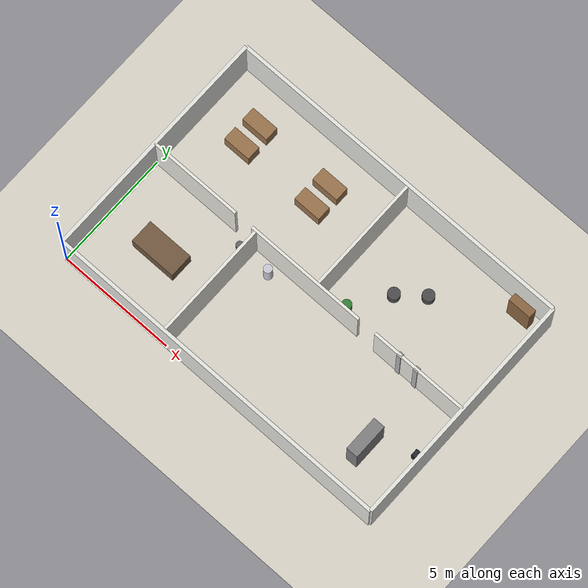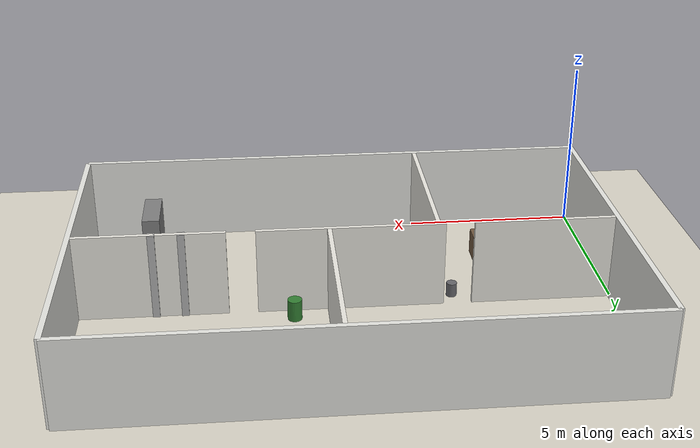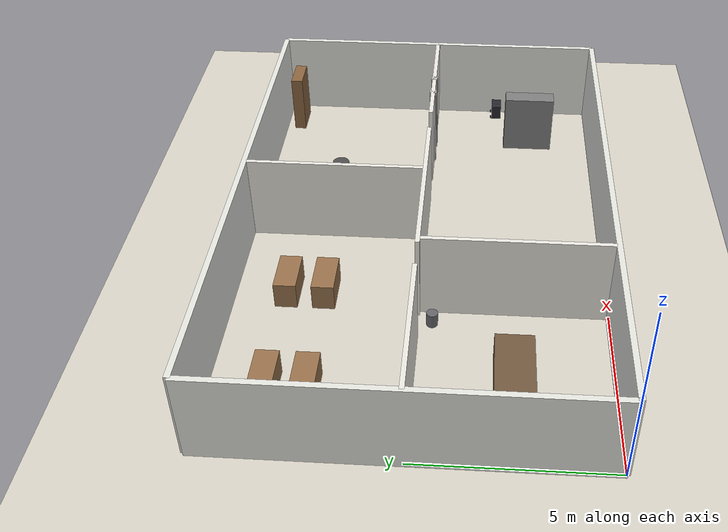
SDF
<?xml version="1.0" ?>
<!-- SPDX-License-Identifier: Apache-2.0 -->
<!-- Office environment for navigation testing.
     15m x 10m floor plan with corridors, rooms, and furniture. -->
<sdf version="1.9">
  <world name="office">
    <physics name="1ms" type="ignored">
      <max_step_size>0.001</max_step_size>
      <real_time_factor>1.0</real_time_factor>
    </physics>

    <plugin filename="gz-sim-physics-system" name="gz::sim::systems::Physics"/>
    <plugin filename="gz-sim-scene-broadcaster-system" name="gz::sim::systems::SceneBroadcaster"/>
    <plugin filename="gz-sim-sensors-system" name="gz::sim::systems::Sensors">
      <render_engine>ogre</render_engine>
    </plugin>
    <plugin filename="gz-sim-user-commands-system" name="gz::sim::systems::UserCommands"/>

    <light type="directional" name="sun">
      <cast_shadows>true</cast_shadows>
      <pose>0 0 10 0 0 0</pose>
      <diffuse>0.8 0.8 0.8 1</diffuse>
      <specular>0.2 0.2 0.2 1</specular>
      <direction>-0.5 0.1 -0.9</direction>
    </light>

    <!-- Ground plane -->
    <model name="ground_plane">
      <static>true</static>
      <link name="link">
        <collision name="collision">
          <geometry><plane><normal>0 0 1</normal><size>20 15</size></plane></geometry>
        </collision>
        <visual name="visual">
          <geometry><plane><normal>0 0 1</normal><size>20 15</size></plane></geometry>
          <material>
            <ambient>0.85 0.83 0.78 1</ambient>
            <diffuse>0.85 0.83 0.78 1</diffuse>
          </material>
        </visual>
      </link>
    </model>

    <!-- Outer walls (15m x 10m, 0.15m thick, 2.5m tall) -->
    <!-- North wall -->
    <model name="wall_north">
      <static>true</static>
      <pose>7.5 10 1.25 0 0 0</pose>
      <link name="link">
        <collision name="collision">
          <geometry><box><size>15 0.15 2.5</size></box></geometry>
        </collision>
        <visual name="visual">
          <geometry><box><size>15 0.15 2.5</size></box></geometry>
          <material><ambient>0.9 0.9 0.88 1</ambient><diffuse>0.9 0.9 0.88 1</diffuse></material>
        </visual>
      </link>
    </model>

    <!-- South wall -->
    <model name="wall_south">
      <static>true</static>
      <pose>7.5 0 1.25 0 0 0</pose>
      <link name="link">
        <collision name="collision">
          <geometry><box><size>15 0.15 2.5</size></box></geometry>
        </collision>
        <visual name="visual">
          <geometry><box><size>15 0.15 2.5</size></box></geometry>
          <material><ambient>0.9 0.9 0.88 1</ambient><diffuse>0.9 0.9 0.88 1</diffuse></material>
        </visual>
      </link>
    </model>

    <!-- West wall -->
    <model name="wall_west">
      <static>true</static>
      <pose>0 5 1.25 0 0 0</pose>
      <link name="link">
        <collision name="collision">
          <geometry><box><size>0.15 10 2.5</size></box></geometry>
        </collision>
        <visual name="visual">
          <geometry><box><size>0.15 10 2.5</size></box></geometry>
          <material><ambient>0.9 0.9 0.88 1</ambient><diffuse>0.9 0.9 0.88 1</diffuse></material>
        </visual>
      </link>
    </model>

    <!-- East wall -->
    <model name="wall_east">
      <static>true</static>
      <pose>15 5 1.25 0 0 0</pose>
      <link name="link">
        <collision name="collision">
          <geometry><box><size>0.15 10 2.5</size></box></geometry>
        </collision>
        <visual name="visual">
          <geometry><box><size>0.15 10 2.5</size></box></geometry>
          <material><ambient>0.9 0.9 0.88 1</ambient><diffuse>0.9 0.9 0.88 1</diffuse></material>
        </visual>
      </link>
    </model>

    <!-- Central corridor wall (separates north rooms from south rooms) -->
    <!-- Left section: x=0 to x=4 -->
    <model name="corridor_wall_left">
      <static>true</static>
      <pose>2 5 1.25 0 0 0</pose>
      <link name="link">
        <collision name="collision">
          <geometry><box><size>4 0.12 2.5</size></box></geometry>
        </collision>
        <visual name="visual">
          <geometry><box><size>4 0.12 2.5</size></box></geometry>
          <material><ambient>0.92 0.91 0.88 1</ambient><diffuse>0.92 0.91 0.88 1</diffuse></material>
        </visual>
      </link>
    </model>

    <!-- Corridor wall gap (door at x=4 to x=4.8, width=0.8m) -->

    <!-- Middle section: x=4.8 to x=10 -->
    <model name="corridor_wall_mid">
      <static>true</static>
      <pose>7.4 5 1.25 0 0 0</pose>
      <link name="link">
        <collision name="collision">
          <geometry><box><size>5.2 0.12 2.5</size></box></geometry>
        </collision>
        <visual name="visual">
          <geometry><box><size>5.2 0.12 2.5</size></box></geometry>
          <material><ambient>0.92 0.91 0.88 1</ambient><diffuse>0.92 0.91 0.88 1</diffuse></material>
        </visual>
      </link>
    </model>

    <!-- Corridor wall gap (door at x=10 to x=10.8, width=0.8m) -->

    <!-- Right section: x=10.8 to x=15 -->
    <model name="corridor_wall_right">
      <static>true</static>
      <pose>12.9 5 1.25 0 0 0</pose>
      <link name="link">
        <collision name="collision">
          <geometry><box><size>4.2 0.12 2.5</size></box></geometry>
        </collision>
        <visual name="visual">
          <geometry><box><size>4.2 0.12 2.5</size></box></geometry>
          <material><ambient>0.92 0.91 0.88 1</ambient><diffuse>0.92 0.91 0.88 1</diffuse></material>
        </visual>
      </link>
    </model>

    <!-- Room divider: Meeting room wall (south side, x=5) -->
    <model name="room_divider_south">
      <static>true</static>
      <pose>5 2.5 1.25 0 0 0</pose>
      <link name="link">
        <collision name="collision">
          <geometry><box><size>0.12 4.88 2.5</size></box></geometry>
        </collision>
        <visual name="visual">
          <geometry><box><size>0.12 4.88 2.5</size></box></geometry>
          <material><ambient>0.92 0.91 0.88 1</ambient><diffuse>0.92 0.91 0.88 1</diffuse></material>
        </visual>
      </link>
    </model>

    <!-- Room divider: North side office partition (x=8) -->
    <model name="room_divider_north">
      <static>true</static>
      <pose>8 7.5 1.25 0 0 0</pose>
      <link name="link">
        <collision name="collision">
          <geometry><box><size>0.12 4.88 2.5</size></box></geometry>
        </collision>
        <visual name="visual">
          <geometry><box><size>0.12 4.88 2.5</size></box></geometry>
          <material><ambient>0.92 0.91 0.88 1</ambient><diffuse>0.92 0.91 0.88 1</diffuse></material>
        </visual>
      </link>
    </model>

    <!-- Furniture: Desks (1.2m x 0.6m x 0.75m) -->
    <model name="desk_1">
      <static>true</static>
      <pose>2 7.5 0.375 0 0 0</pose>
      <link name="link">
        <collision name="collision">
          <geometry><box><size>1.2 0.6 0.75</size></box></geometry>
        </collision>
        <visual name="visual">
          <geometry><box><size>1.2 0.6 0.75</size></box></geometry>
          <material><ambient>0.6 0.45 0.3 1</ambient><diffuse>0.6 0.45 0.3 1</diffuse></material>
        </visual>
      </link>
    </model>

    <model name="desk_2">
      <static>true</static>
      <pose>2 8.5 0.375 0 0 0</pose>
      <link name="link">
        <collision name="collision">
          <geometry><box><size>1.2 0.6 0.75</size></box></geometry>
        </collision>
        <visual name="visual">
          <geometry><box><size>1.2 0.6 0.75</size></box></geometry>
          <material><ambient>0.6 0.45 0.3 1</ambient><diffuse>0.6 0.45 0.3 1</diffuse></material>
        </visual>
      </link>
    </model>

    <model name="desk_3">
      <static>true</static>
      <pose>5.5 7.5 0.375 0 0 0</pose>
      <link name="link">
        <collision name="collision">
          <geometry><box><size>1.2 0.6 0.75</size></box></geometry>
        </collision>
        <visual name="visual">
          <geometry><box><size>1.2 0.6 0.75</size></box></geometry>
          <material><ambient>0.6 0.45 0.3 1</ambient><diffuse>0.6 0.45 0.3 1</diffuse></material>
        </visual>
      </link>
    </model>

    <model name="desk_4">
      <static>true</static>
      <pose>5.5 8.5 0.375 0 0 0</pose>
      <link name="link">
        <collision name="collision">
          <geometry><box><size>1.2 0.6 0.75</size></box></geometry>
        </collision>
        <visual name="visual">
          <geometry><box><size>1.2 0.6 0.75</size></box></geometry>
          <material><ambient>0.6 0.45 0.3 1</ambient><diffuse>0.6 0.45 0.3 1</diffuse></material>
        </visual>
      </link>
    </model>

    <!-- Meeting table (south-west room, 2m x 1m) -->
    <model name="meeting_table">
      <static>true</static>
      <pose>2.5 2.5 0.375 0 0 0</pose>
      <link name="link">
        <collision name="collision">
          <geometry><box><size>2.0 1.0 0.75</size></box></geometry>
        </collision>
        <visual name="visual">
          <geometry><box><size>2.0 1.0 0.75</size></box></geometry>
          <material><ambient>0.45 0.35 0.25 1</ambient><diffuse>0.45 0.35 0.25 1</diffuse></material>
        </visual>
      </link>
    </model>

    <!-- Moveable chairs (dynamic obstacles) -->
    <model name="chair_1">
      <static>false</static>
      <pose>10 7 0.225 0 0 0.3</pose>
      <link name="link">
        <inertial>
          <mass>5.0</mass>
          <inertia><ixx>0.05</ixx><iyy>0.05</iyy><izz>0.03</izz></inertia>
        </inertial>
        <collision name="collision">
          <geometry><cylinder><radius>0.25</radius><length>0.45</length></cylinder></geometry>
        </collision>
        <visual name="visual">
          <geometry><cylinder><radius>0.25</radius><length>0.45</length></cylinder></geometry>
          <material><ambient>0.3 0.3 0.3 1</ambient><diffuse>0.3 0.3 0.3 1</diffuse></material>
        </visual>
      </link>
    </model>

    <model name="chair_2">
      <static>false</static>
      <pose>11 7.8 0.225 0 0 -0.2</pose>
      <link name="link">
        <inertial>
          <mass>5.0</mass>
          <inertia><ixx>0.05</ixx><iyy>0.05</iyy><izz>0.03</izz></inertia>
        </inertial>
        <collision name="collision">
          <geometry><cylinder><radius>0.25</radius><length>0.45</length></cylinder></geometry>
        </collision>
        <visual name="visual">
          <geometry><cylinder><radius>0.25</radius><length>0.45</length></cylinder></geometry>
          <material><ambient>0.3 0.3 0.3 1</ambient><diffuse>0.3 0.3 0.3 1</diffuse></material>
        </visual>
      </link>
    </model>

    <!-- Storage cabinet (south-east room) -->
    <model name="cabinet">
      <static>true</static>
      <pose>13 2 0.9 0 0 0</pose>
      <link name="link">
        <collision name="collision">
          <geometry><box><size>0.5 1.5 1.8</size></box></geometry>
        </collision>
        <visual name="visual">
          <geometry><box><size>0.5 1.5 1.8</size></box></geometry>
          <material><ambient>0.5 0.5 0.5 1</ambient><diffuse>0.5 0.5 0.5 1</diffuse></material>
        </visual>
      </link>
    </model>

    <!-- Narrow doorway test: 0.6m passage between two pillars -->
    <model name="narrow_pillar_left">
      <static>true</static>
      <pose>12 5 1.25 0 0 0</pose>
      <link name="link">
        <collision name="collision">
          <geometry><box><size>0.2 0.2 2.5</size></box></geometry>
        </collision>
        <visual name="visual">
          <geometry><box><size>0.2 0.2 2.5</size></box></geometry>
          <material><ambient>0.7 0.7 0.7 1</ambient><diffuse>0.7 0.7 0.7 1</diffuse></material>
        </visual>
      </link>
    </model>

    <model name="narrow_pillar_right">
      <static>true</static>
      <pose>12.8 5 1.25 0 0 0</pose>
      <link name="link">
        <collision name="collision">
          <geometry><box><size>0.2 0.2 2.5</size></box></geometry>
        </collision>
        <visual name="visual">
          <geometry><box><size>0.2 0.2 2.5</size></box></geometry>
          <material><ambient>0.7 0.7 0.7 1</ambient><diffuse>0.7 0.7 0.7 1</diffuse></material>
        </visual>
      </link>
    </model>

    <!-- Bookshelf (north-east corner, 1.8m tall) -->
    <model name="bookshelf">
      <static>true</static>
      <pose>14 9.5 0.9 0 0 0</pose>
      <link name="link">
        <collision name="collision">
          <geometry><box><size>1.0 0.35 1.8</size></box></geometry>
        </collision>
        <visual name="visual">
          <geometry><box><size>1.0 0.35 1.8</size></box></geometry>
          <material><ambient>0.55 0.4 0.25 1</ambient><diffuse>0.55 0.4 0.25 1</diffuse></material>
        </visual>
      </link>
    </model>

    <!-- Water cooler (corridor, near south door) -->
    <model name="water_cooler">
      <static>true</static>
      <pose>6 4.5 0.5 0 0 0</pose>
      <link name="link">
        <collision name="collision">
          <geometry><cylinder><radius>0.18</radius><length>1.0</length></cylinder></geometry>
        </collision>
        <visual name="visual">
          <geometry><cylinder><radius>0.18</radius><length>1.0</length></cylinder></geometry>
          <material><ambient>0.8 0.8 0.85 1</ambient><diffuse>0.8 0.8 0.85 1</diffuse></material>
        </visual>
      </link>
    </model>

    <!-- Potted plant (corridor decoration) -->
    <model name="potted_plant">
      <static>true</static>
      <pose>9 5.5 0.3 0 0 0</pose>
      <link name="link">
        <collision name="collision">
          <geometry><cylinder><radius>0.2</radius><length>0.6</length></cylinder></geometry>
        </collision>
        <visual name="visual">
          <geometry><cylinder><radius>0.2</radius><length>0.6</length></cylinder></geometry>
          <material><ambient>0.2 0.5 0.2 1</ambient><diffuse>0.2 0.5 0.2 1</diffuse></material>
        </visual>
      </link>
    </model>

    <!-- Trash bin (near corridor wall) -->
    <model name="trash_bin">
      <static>false</static>
      <pose>4.5 4.6 0.2 0 0 0</pose>
      <link name="link">
        <inertial>
          <mass>2.0</mass>
          <inertia><ixx>0.02</ixx><iyy>0.02</iyy><izz>0.01</izz></inertia>
        </inertial>
        <collision name="collision">
          <geometry><cylinder><radius>0.15</radius><length>0.4</length></cylinder></geometry>
        </collision>
        <visual name="visual">
          <geometry><cylinder><radius>0.15</radius><length>0.4</length></cylinder></geometry>
          <material><ambient>0.4 0.4 0.42 1</ambient><diffuse>0.4 0.4 0.42 1</diffuse></material>
        </visual>
      </link>
    </model>

    <!-- Charging dock with AprilTag (against east wall) -->
    <include>
      <uri>model://charging_dock</uri>
      <name>charging_dock_1</name>
      <pose>14.7 3 0 0 0 3.14159</pose>
    </include>

  </world>
</sdf>

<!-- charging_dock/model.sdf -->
<!-- SPDX-License-Identifier: Apache-2.0 -->
<sdf version="1.9">
  <model name="charging_dock">
    <static>true</static>

    <!-- Dock body -->
    <link name="dock_body">
      <pose>0 0 0.25 0 0 0</pose>
      <collision name="collision">
        <geometry><box><size>0.4 0.3 0.5</size></box></geometry>
      </collision>
      <visual name="body_visual">
        <geometry><box><size>0.4 0.3 0.5</size></box></geometry>
        <material>
          <ambient>0.15 0.15 0.18 1</ambient>
          <diffuse>0.15 0.15 0.18 1</diffuse>
          <specular>0.3 0.3 0.3 1</specular>
        </material>
      </visual>
    </link>

    <!-- AprilTag marker face (front-facing, z=0.35m height) -->
    <link name="apriltag_marker">
      <pose>0 -0.151 0.35 0 0 0</pose>
      <visual name="tag_visual">
        <geometry><box><size>0.16 0.001 0.16</size></box></geometry>
        <material>
          <ambient>1.0 1.0 1.0 1</ambient>
          <diffuse>1.0 1.0 1.0 1</diffuse>
        </material>
      </visual>
    </link>

    <!-- AprilTag black border (slightly larger) -->
    <link name="apriltag_border">
      <pose>0 -0.1505 0.35 0 0 0</pose>
      <visual name="border_visual">
        <geometry><box><size>0.20 0.001 0.20</size></box></geometry>
        <material>
          <ambient>0.0 0.0 0.0 1</ambient>
          <diffuse>0.0 0.0 0.0 1</diffuse>
        </material>
      </visual>
    </link>

    <!-- Pogo pin contact plate (bottom front) -->
    <link name="contact_plate">
      <pose>0 -0.14 0.06 0 0 0</pose>
      <collision name="collision">
        <geometry><box><size>0.12 0.02 0.08</size></box></geometry>
      </collision>
      <visual name="contact_visual">
        <geometry><box><size>0.12 0.02 0.08</size></box></geometry>
        <material>
          <ambient>0.8 0.7 0.2 1</ambient>
          <diffuse>0.8 0.7 0.2 1</diffuse>
          <specular>0.9 0.9 0.5 1</specular>
        </material>
      </visual>
    </link>

    <!-- LED indicator left (green) -->
    <link name="led_green">
      <pose>-0.15 -0.151 0.46 0 0 0</pose>
      <visual name="led_visual">
        <geometry><sphere><radius>0.01</radius></sphere></geometry>
        <material>
          <ambient>0.0 0.8 0.0 1</ambient>
          <diffuse>0.0 1.0 0.0 1</diffuse>
          <emissive>0.0 0.6 0.0 1</emissive>
        </material>
      </visual>
    </link>

    <!-- LED indicator right (red) -->
    <link name="led_red">
      <pose>0.15 -0.151 0.46 0 0 0</pose>
      <visual name="led_visual">
        <geometry><sphere><radius>0.01</radius></sphere></geometry>
        <material>
          <ambient>0.8 0.0 0.0 1</ambient>
          <diffuse>1.0 0.0 0.0 1</diffuse>
          <emissive>0.6 0.0 0.0 1</emissive>
        </material>
      </visual>
    </link>

    <!-- Guide rails for alignment -->
    <link name="guide_left">
      <pose>-0.18 -0.10 0.05 0 0 0</pose>
      <collision name="collision">
        <geometry><box><size>0.02 0.20 0.10</size></box></geometry>
      </collision>
      <visual name="visual">
        <geometry><box><size>0.02 0.20 0.10</size></box></geometry>
        <material>
          <ambient>0.3 0.3 0.35 1</ambient>
          <diffuse>0.3 0.3 0.35 1</diffuse>
        </material>
      </visual>
    </link>

    <link name="guide_right">
      <pose>0.18 -0.10 0.05 0 0 0</pose>
      <collision name="collision">
        <geometry><box><size>0.02 0.20 0.10</size></box></geometry>
      </collision>
      <visual name="visual">
        <geometry><box><size>0.02 0.20 0.10</size></box></geometry>
        <material>
          <ambient>0.3 0.3 0.35 1</ambient>
          <diffuse>0.3 0.3 0.35 1</diffuse>
        </material>
      </visual>
    </link>

    <!-- Fixed joints to connect all links -->
    <joint name="tag_joint" type="fixed">
      <parent>dock_body</parent>
      <child>apriltag_marker</child>
    </joint>
    <joint name="border_joint" type="fixed">
      <parent>dock_body</parent>
      <child>apriltag_border</child>
    </joint>
    <joint name="contact_joint" type="fixed">
      <parent>dock_body</parent>
      <child>contact_plate</child>
    </joint>
    <joint name="led_green_joint" type="fixed">
      <parent>dock_body</parent>
      <child>led_green</child>
    </joint>
    <joint name="led_red_joint" type="fixed">
      <parent>dock_body</parent>
      <child>led_red</child>
    </joint>
    <joint name="guide_left_joint" type="fixed">
      <parent>dock_body</parent>
      <child>guide_left</child>
    </joint>
    <joint name="guide_right_joint" type="fixed">
      <parent>dock_body</parent>
      <child>guide_right</child>
    </joint>
  </model>
</sdf>
